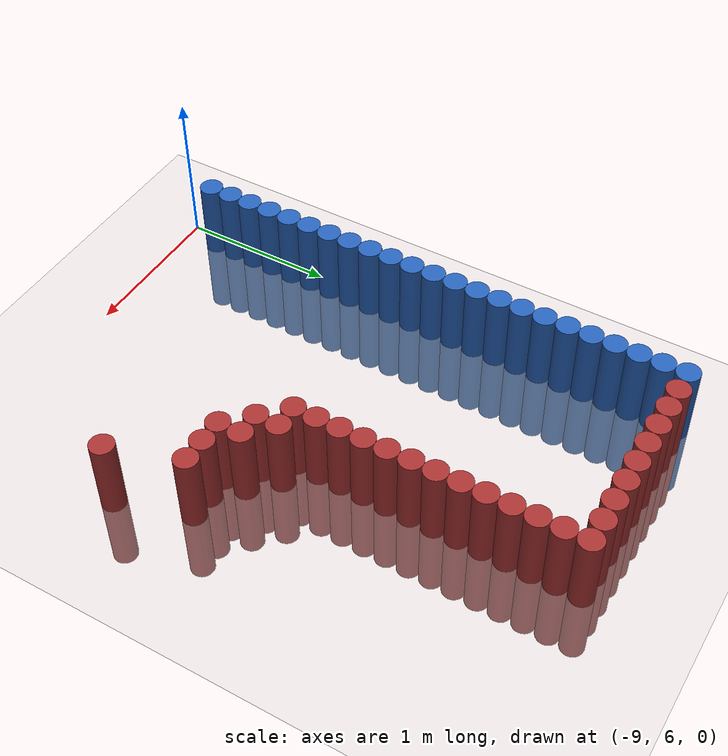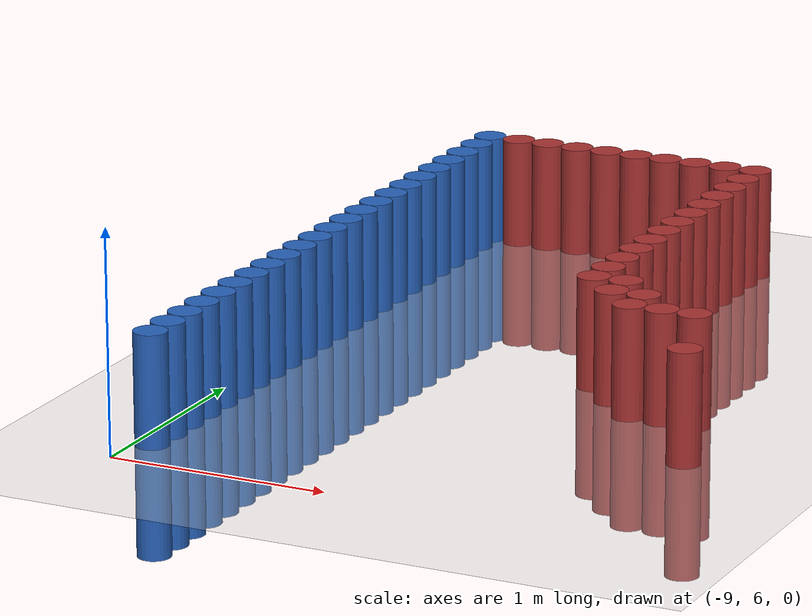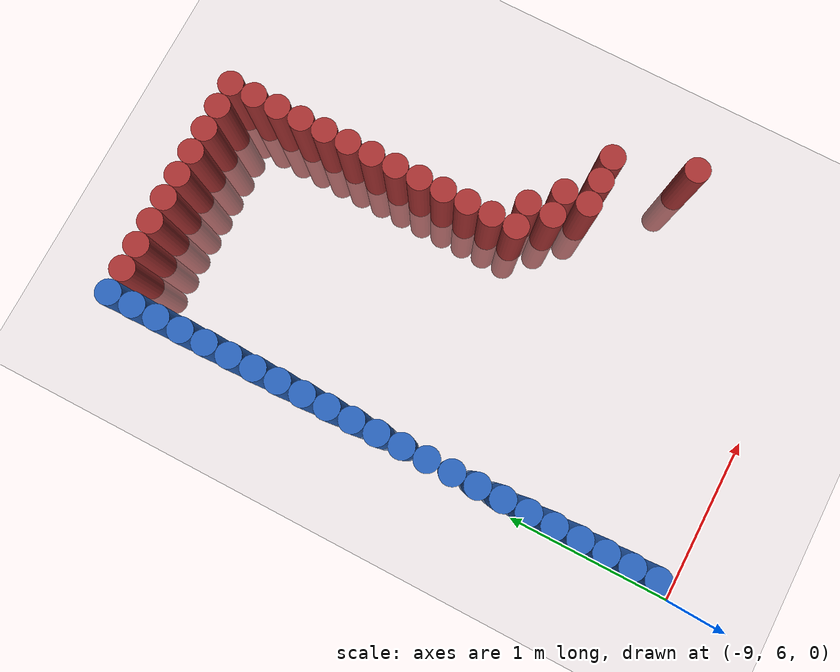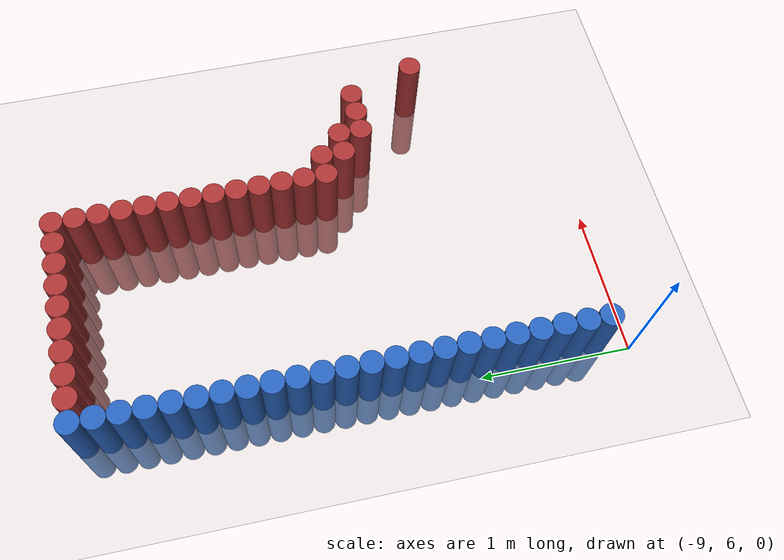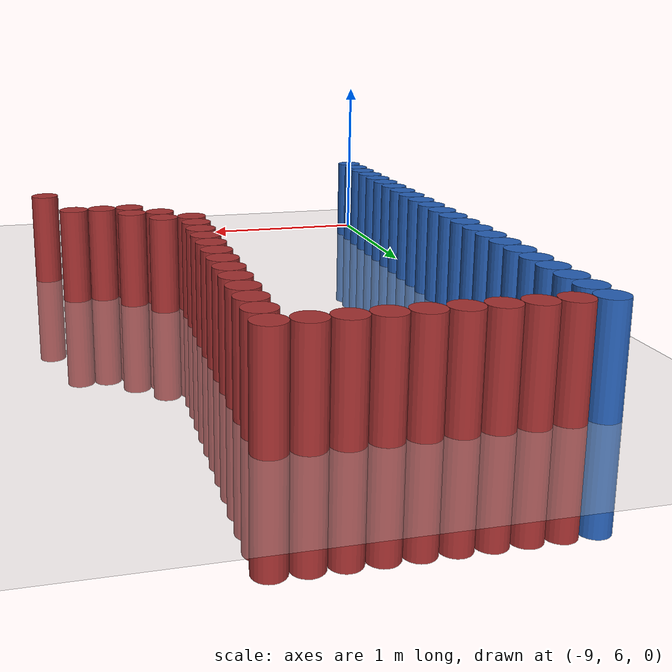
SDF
<sdf version="1.6">
 <world name="default">
  <model name="ground_plane">
   <static>1</static>
   <link name="link">
    <collision name="collision">
     <geometry><plane><normal>0 0 1</normal><size>100 100</size></plane></geometry>
     <surface><friction><ode><mu>100</mu><mu2>50</mu2></ode></friction></surface>
    </collision>
    <visual name="visual">
     <cast_shadows>0</cast_shadows>
     <geometry><plane><normal>0 0 1</normal><size>100 100</size></plane></geometry>
     <material>
      <script><uri>file://media/materials/scripts/gazebo.material</uri><name>Gazebo/Grey</name></script>
     </material>
    </visual>
   </link>
  </model>
  <model name="unit_cylinder_132">
   <static>1</static>
   <pose>-8.925000 6.225000 0.000000 0.000000 0.000000 0.000000</pose>
   <link name="link">
    <inertial>
     <mass>1</mass>
     <inertia><ixx>0.145833</ixx><ixy>0</ixy><ixz>0</ixz><iyy>0.145833</iyy><iyz>0</iyz><izz>0.125</izz></inertia>
    </inertial>
    <collision name="collision">
     <geometry><cylinder><radius>0.075000</radius><length>1</length></cylinder></geometry>
    </collision>
    <visual name="visual">
     <geometry><cylinder><radius>0.075000</radius><length>1</length></cylinder></geometry>
     <material>
      <ambient>0.152000 0.379000 0.720000 1</ambient>
      <diffuse>0.152000 0.379000 0.720000 1</diffuse>
     </material>
     <material>
      <script><name>Gazebo/Grey</name><uri>file://media/materials/scripts/gazebo.material</uri></script>
     </material>
    </visual>
   </link>
  </model>
  <model name="unit_cylinder_133">
   <static>1</static>
   <pose>-8.925000 6.375000 0.000000 0.000000 0.000000 0.000000</pose>
   <link name="link">
    <inertial>
     <mass>1</mass>
     <inertia><ixx>0.145833</ixx><ixy>0</ixy><ixz>0</ixz><iyy>0.145833</iyy><iyz>0</iyz><izz>0.125</izz></inertia>
    </inertial>
    <collision name="collision">
     <geometry><cylinder><radius>0.075000</radius><length>1</length></cylinder></geometry>
    </collision>
    <visual name="visual">
     <geometry><cylinder><radius>0.075000</radius><length>1</length></cylinder></geometry>
     <material>
      <ambient>0.152000 0.379000 0.720000 1</ambient>
      <diffuse>0.152000 0.379000 0.720000 1</diffuse>
     </material>
     <material>
      <script><name>Gazebo/Grey</name><uri>file://media/materials/scripts/gazebo.material</uri></script>
     </material>
    </visual>
   </link>
  </model>
  <model name="unit_cylinder_134">
   <static>1</static>
   <pose>-8.925000 6.525000 0.000000 0.000000 0.000000 0.000000</pose>
   <link name="link">
    <inertial>
     <mass>1</mass>
     <inertia><ixx>0.145833</ixx><ixy>0</ixy><ixz>0</ixz><iyy>0.145833</iyy><iyz>0</iyz><izz>0.125</izz></inertia>
    </inertial>
    <collision name="collision">
     <geometry><cylinder><radius>0.075000</radius><length>1</length></cylinder></geometry>
    </collision>
    <visual name="visual">
     <geometry><cylinder><radius>0.075000</radius><length>1</length></cylinder></geometry>
     <material>
      <ambient>0.152000 0.379000 0.720000 1</ambient>
      <diffuse>0.152000 0.379000 0.720000 1</diffuse>
     </material>
     <material>
      <script><name>Gazebo/Grey</name><uri>file://media/materials/scripts/gazebo.material</uri></script>
     </material>
    </visual>
   </link>
  </model>
  <model name="unit_cylinder_135">
   <static>1</static>
   <pose>-8.925000 6.675000 0.000000 0.000000 0.000000 0.000000</pose>
   <link name="link">
    <inertial>
     <mass>1</mass>
     <inertia><ixx>0.145833</ixx><ixy>0</ixy><ixz>0</ixz><iyy>0.145833</iyy><iyz>0</iyz><izz>0.125</izz></inertia>
    </inertial>
    <collision name="collision">
     <geometry><cylinder><radius>0.075000</radius><length>1</length></cylinder></geometry>
    </collision>
    <visual name="visual">
     <geometry><cylinder><radius>0.075000</radius><length>1</length></cylinder></geometry>
     <material>
      <ambient>0.152000 0.379000 0.720000 1</ambient>
      <diffuse>0.152000 0.379000 0.720000 1</diffuse>
     </material>
     <material>
      <script><name>Gazebo/Grey</name><uri>file://media/materials/scripts/gazebo.material</uri></script>
     </material>
    </visual>
   </link>
  </model>
  <model name="unit_cylinder_136">
   <static>1</static>
   <pose>-8.925000 6.825000 0.000000 0.000000 0.000000 0.000000</pose>
   <link name="link">
    <inertial>
     <mass>1</mass>
     <inertia><ixx>0.145833</ixx><ixy>0</ixy><ixz>0</ixz><iyy>0.145833</iyy><iyz>0</iyz><izz>0.125</izz></inertia>
    </inertial>
    <collision name="collision">
     <geometry><cylinder><radius>0.075000</radius><length>1</length></cylinder></geometry>
    </collision>
    <visual name="visual">
     <geometry><cylinder><radius>0.075000</radius><length>1</length></cylinder></geometry>
     <material>
      <ambient>0.152000 0.379000 0.720000 1</ambient>
      <diffuse>0.152000 0.379000 0.720000 1</diffuse>
     </material>
     <material>
      <script><name>Gazebo/Grey</name><uri>file://media/materials/scripts/gazebo.material</uri></script>
     </material>
    </visual>
   </link>
  </model>
  <model name="unit_cylinder_137">
   <static>1</static>
   <pose>-8.925000 6.975000 0.000000 0.000000 0.000000 0.000000</pose>
   <link name="link">
    <inertial>
     <mass>1</mass>
     <inertia><ixx>0.145833</ixx><ixy>0</ixy><ixz>0</ixz><iyy>0.145833</iyy><iyz>0</iyz><izz>0.125</izz></inertia>
    </inertial>
    <collision name="collision">
     <geometry><cylinder><radius>0.075000</radius><length>1</length></cylinder></geometry>
    </collision>
    <visual name="visual">
     <geometry><cylinder><radius>0.075000</radius><length>1</length></cylinder></geometry>
     <material>
      <ambient>0.152000 0.379000 0.720000 1</ambient>
      <diffuse>0.152000 0.379000 0.720000 1</diffuse>
     </material>
     <material>
      <script><name>Gazebo/Grey</name><uri>file://media/materials/scripts/gazebo.material</uri></script>
     </material>
    </visual>
   </link>
  </model>
  <model name="unit_cylinder_138">
   <static>1</static>
   <pose>-8.925000 7.125000 0.000000 0.000000 0.000000 0.000000</pose>
   <link name="link">
    <inertial>
     <mass>1</mass>
     <inertia><ixx>0.145833</ixx><ixy>0</ixy><ixz>0</ixz><iyy>0.145833</iyy><iyz>0</iyz><izz>0.125</izz></inertia>
    </inertial>
    <collision name="collision">
     <geometry><cylinder><radius>0.075000</radius><length>1</length></cylinder></geometry>
    </collision>
    <visual name="visual">
     <geometry><cylinder><radius>0.075000</radius><length>1</length></cylinder></geometry>
     <material>
      <ambient>0.152000 0.379000 0.720000 1</ambient>
      <diffuse>0.152000 0.379000 0.720000 1</diffuse>
     </material>
     <material>
      <script><name>Gazebo/Grey</name><uri>file://media/materials/scripts/gazebo.material</uri></script>
     </material>
    </visual>
   </link>
  </model>
  <model name="unit_cylinder_139">
   <static>1</static>
   <pose>-8.925000 7.275000 0.000000 0.000000 0.000000 0.000000</pose>
   <link name="link">
    <inertial>
     <mass>1</mass>
     <inertia><ixx>0.145833</ixx><ixy>0</ixy><ixz>0</ixz><iyy>0.145833</iyy><iyz>0</iyz><izz>0.125</izz></inertia>
    </inertial>
    <collision name="collision">
     <geometry><cylinder><radius>0.075000</radius><length>1</length></cylinder></geometry>
    </collision>
    <visual name="visual">
     <geometry><cylinder><radius>0.075000</radius><length>1</length></cylinder></geometry>
     <material>
      <ambient>0.152000 0.379000 0.720000 1</ambient>
      <diffuse>0.152000 0.379000 0.720000 1</diffuse>
     </material>
     <material>
      <script><name>Gazebo/Grey</name><uri>file://media/materials/scripts/gazebo.material</uri></script>
     </material>
    </visual>
   </link>
  </model>
  <model name="unit_cylinder_140">
   <static>1</static>
   <pose>-8.925000 7.425000 0.000000 0.000000 0.000000 0.000000</pose>
   <link name="link">
    <inertial>
     <mass>1</mass>
     <inertia><ixx>0.145833</ixx><ixy>0</ixy><ixz>0</ixz><iyy>0.145833</iyy><iyz>0</iyz><izz>0.125</izz></inertia>
    </inertial>
    <collision name="collision">
     <geometry><cylinder><radius>0.075000</radius><length>1</length></cylinder></geometry>
    </collision>
    <visual name="visual">
     <geometry><cylinder><radius>0.075000</radius><length>1</length></cylinder></geometry>
     <material>
      <ambient>0.152000 0.379000 0.720000 1</ambient>
      <diffuse>0.152000 0.379000 0.720000 1</diffuse>
     </material>
     <material>
      <script><name>Gazebo/Grey</name><uri>file://media/materials/scripts/gazebo.material</uri></script>
     </material>
    </visual>
   </link>
  </model>
  <model name="unit_cylinder_141">
   <static>1</static>
   <pose>-8.925000 7.575000 0.000000 0.000000 0.000000 0.000000</pose>
   <link name="link">
    <inertial>
     <mass>1</mass>
     <inertia><ixx>0.145833</ixx><ixy>0</ixy><ixz>0</ixz><iyy>0.145833</iyy><iyz>0</iyz><izz>0.125</izz></inertia>
    </inertial>
    <collision name="collision">
     <geometry><cylinder><radius>0.075000</radius><length>1</length></cylinder></geometry>
    </collision>
    <visual name="visual">
     <geometry><cylinder><radius>0.075000</radius><length>1</length></cylinder></geometry>
     <material>
      <ambient>0.152000 0.379000 0.720000 1</ambient>
      <diffuse>0.152000 0.379000 0.720000 1</diffuse>
     </material>
     <material>
      <script><name>Gazebo/Grey</name><uri>file://media/materials/scripts/gazebo.material</uri></script>
     </material>
    </visual>
   </link>
  </model>
  <model name="unit_cylinder_142">
   <static>1</static>
   <pose>-8.925000 7.725000 0.000000 0.000000 0.000000 0.000000</pose>
   <link name="link">
    <inertial>
     <mass>1</mass>
     <inertia><ixx>0.145833</ixx><ixy>0</ixy><ixz>0</ixz><iyy>0.145833</iyy><iyz>0</iyz><izz>0.125</izz></inertia>
    </inertial>
    <collision name="collision">
     <geometry><cylinder><radius>0.075000</radius><length>1</length></cylinder></geometry>
    </collision>
    <visual name="visual">
     <geometry><cylinder><radius>0.075000</radius><length>1</length></cylinder></geometry>
     <material>
      <ambient>0.152000 0.379000 0.720000 1</ambient>
      <diffuse>0.152000 0.379000 0.720000 1</diffuse>
     </material>
     <material>
      <script><name>Gazebo/Grey</name><uri>file://media/materials/scripts/gazebo.material</uri></script>
     </material>
    </visual>
   </link>
  </model>
  <model name="unit_cylinder_143">
   <static>1</static>
   <pose>-8.925000 7.875000 0.000000 0.000000 0.000000 0.000000</pose>
   <link name="link">
    <inertial>
     <mass>1</mass>
     <inertia><ixx>0.145833</ixx><ixy>0</ixy><ixz>0</ixz><iyy>0.145833</iyy><iyz>0</iyz><izz>0.125</izz></inertia>
    </inertial>
    <collision name="collision">
     <geometry><cylinder><radius>0.075000</radius><length>1</length></cylinder></geometry>
    </collision>
    <visual name="visual">
     <geometry><cylinder><radius>0.075000</radius><length>1</length></cylinder></geometry>
     <material>
      <ambient>0.152000 0.379000 0.720000 1</ambient>
      <diffuse>0.152000 0.379000 0.720000 1</diffuse>
     </material>
     <material>
      <script><name>Gazebo/Grey</name><uri>file://media/materials/scripts/gazebo.material</uri></script>
     </material>
    </visual>
   </link>
  </model>
  <model name="unit_cylinder_144">
   <static>1</static>
   <pose>-8.925000 8.025000 0.000000 0.000000 0.000000 0.000000</pose>
   <link name="link">
    <inertial>
     <mass>1</mass>
     <inertia><ixx>0.145833</ixx><ixy>0</ixy><ixz>0</ixz><iyy>0.145833</iyy><iyz>0</iyz><izz>0.125</izz></inertia>
    </inertial>
    <collision name="collision">
     <geometry><cylinder><radius>0.075000</radius><length>1</length></cylinder></geometry>
    </collision>
    <visual name="visual">
     <geometry><cylinder><radius>0.075000</radius><length>1</length></cylinder></geometry>
     <material>
      <ambient>0.152000 0.379000 0.720000 1</ambient>
      <diffuse>0.152000 0.379000 0.720000 1</diffuse>
     </material>
     <material>
      <script><name>Gazebo/Grey</name><uri>file://media/materials/scripts/gazebo.material</uri></script>
     </material>
    </visual>
   </link>
  </model>
  <model name="unit_cylinder_145">
   <static>1</static>
   <pose>-8.925000 8.175000 0.000000 0.000000 0.000000 0.000000</pose>
   <link name="link">
    <inertial>
     <mass>1</mass>
     <inertia><ixx>0.145833</ixx><ixy>0</ixy><ixz>0</ixz><iyy>0.145833</iyy><iyz>0</iyz><izz>0.125</izz></inertia>
    </inertial>
    <collision name="collision">
     <geometry><cylinder><radius>0.075000</radius><length>1</length></cylinder></geometry>
    </collision>
    <visual name="visual">
     <geometry><cylinder><radius>0.075000</radius><length>1</length></cylinder></geometry>
     <material>
      <ambient>0.152000 0.379000 0.720000 1</ambient>
      <diffuse>0.152000 0.379000 0.720000 1</diffuse>
     </material>
     <material>
      <script><name>Gazebo/Grey</name><uri>file://media/materials/scripts/gazebo.material</uri></script>
     </material>
    </visual>
   </link>
  </model>
  <model name="unit_cylinder_146">
   <static>1</static>
   <pose>-8.925000 8.325000 0.000000 0.000000 0.000000 0.000000</pose>
   <link name="link">
    <inertial>
     <mass>1</mass>
     <inertia><ixx>0.145833</ixx><ixy>0</ixy><ixz>0</ixz><iyy>0.145833</iyy><iyz>0</iyz><izz>0.125</izz></inertia>
    </inertial>
    <collision name="collision">
     <geometry><cylinder><radius>0.075000</radius><length>1</length></cylinder></geometry>
    </collision>
    <visual name="visual">
     <geometry><cylinder><radius>0.075000</radius><length>1</length></cylinder></geometry>
     <material>
      <ambient>0.152000 0.379000 0.720000 1</ambient>
      <diffuse>0.152000 0.379000 0.720000 1</diffuse>
     </material>
     <material>
      <script><name>Gazebo/Grey</name><uri>file://media/materials/scripts/gazebo.material</uri></script>
     </material>
    </visual>
   </link>
  </model>
  <model name="unit_cylinder_147">
   <static>1</static>
   <pose>-8.925000 8.475000 0.000000 0.000000 0.000000 0.000000</pose>
   <link name="link">
    <inertial>
     <mass>1</mass>
     <inertia><ixx>0.145833</ixx><ixy>0</ixy><ixz>0</ixz><iyy>0.145833</iyy><iyz>0</iyz><izz>0.125</izz></inertia>
    </inertial>
    <collision name="collision">
     <geometry><cylinder><radius>0.075000</radius><length>1</length></cylinder></geometry>
    </collision>
    <visual name="visual">
     <geometry><cylinder><radius>0.075000</radius><length>1</length></cylinder></geometry>
     <material>
      <ambient>0.152000 0.379000 0.720000 1</ambient>
      <diffuse>0.152000 0.379000 0.720000 1</diffuse>
     </material>
     <material>
      <script><name>Gazebo/Grey</name><uri>file://media/materials/scripts/gazebo.material</uri></script>
     </material>
    </visual>
   </link>
  </model>
  <model name="unit_cylinder_148">
   <static>1</static>
   <pose>-8.925000 8.625000 0.000000 0.000000 0.000000 0.000000</pose>
   <link name="link">
    <inertial>
     <mass>1</mass>
     <inertia><ixx>0.145833</ixx><ixy>0</ixy><ixz>0</ixz><iyy>0.145833</iyy><iyz>0</iyz><izz>0.125</izz></inertia>
    </inertial>
    <collision name="collision">
     <geometry><cylinder><radius>0.075000</radius><length>1</length></cylinder></geometry>
    </collision>
    <visual name="visual">
     <geometry><cylinder><radius>0.075000</radius><length>1</length></cylinder></geometry>
     <material>
      <ambient>0.152000 0.379000 0.720000 1</ambient>
      <diffuse>0.152000 0.379000 0.720000 1</diffuse>
     </material>
     <material>
      <script><name>Gazebo/Grey</name><uri>file://media/materials/scripts/gazebo.material</uri></script>
     </material>
    </visual>
   </link>
  </model>
  <model name="unit_cylinder_149">
   <static>1</static>
   <pose>-8.925000 8.775000 0.000000 0.000000 0.000000 0.000000</pose>
   <link name="link">
    <inertial>
     <mass>1</mass>
     <inertia><ixx>0.145833</ixx><ixy>0</ixy><ixz>0</ixz><iyy>0.145833</iyy><iyz>0</iyz><izz>0.125</izz></inertia>
    </inertial>
    <collision name="collision">
     <geometry><cylinder><radius>0.075000</radius><length>1</length></cylinder></geometry>
    </collision>
    <visual name="visual">
     <geometry><cylinder><radius>0.075000</radius><length>1</length></cylinder></geometry>
     <material>
      <ambient>0.152000 0.379000 0.720000 1</ambient>
      <diffuse>0.152000 0.379000 0.720000 1</diffuse>
     </material>
     <material>
      <script><name>Gazebo/Grey</name><uri>file://media/materials/scripts/gazebo.material</uri></script>
     </material>
    </visual>
   </link>
  </model>
  <model name="unit_cylinder_150">
   <static>1</static>
   <pose>-8.925000 8.925000 0.000000 0.000000 0.000000 0.000000</pose>
   <link name="link">
    <inertial>
     <mass>1</mass>
     <inertia><ixx>0.145833</ixx><ixy>0</ixy><ixz>0</ixz><iyy>0.145833</iyy><iyz>0</iyz><izz>0.125</izz></inertia>
    </inertial>
    <collision name="collision">
     <geometry><cylinder><radius>0.075000</radius><length>1</length></cylinder></geometry>
    </collision>
    <visual name="visual">
     <geometry><cylinder><radius>0.075000</radius><length>1</length></cylinder></geometry>
     <material>
      <ambient>0.152000 0.379000 0.720000 1</ambient>
      <diffuse>0.152000 0.379000 0.720000 1</diffuse>
     </material>
     <material>
      <script><name>Gazebo/Grey</name><uri>file://media/materials/scripts/gazebo.material</uri></script>
     </material>
    </visual>
   </link>
  </model>
  <model name="unit_cylinder_151">
   <static>1</static>
   <pose>-8.925000 9.075000 0.000000 0.000000 0.000000 0.000000</pose>
   <link name="link">
    <inertial>
     <mass>1</mass>
     <inertia><ixx>0.145833</ixx><ixy>0</ixy><ixz>0</ixz><iyy>0.145833</iyy><iyz>0</iyz><izz>0.125</izz></inertia>
    </inertial>
    <collision name="collision">
     <geometry><cylinder><radius>0.075000</radius><length>1</length></cylinder></geometry>
    </collision>
    <visual name="visual">
     <geometry><cylinder><radius>0.075000</radius><length>1</length></cylinder></geometry>
     <material>
      <ambient>0.152000 0.379000 0.720000 1</ambient>
      <diffuse>0.152000 0.379000 0.720000 1</diffuse>
     </material>
     <material>
      <script><name>Gazebo/Grey</name><uri>file://media/materials/scripts/gazebo.material</uri></script>
     </material>
    </visual>
   </link>
  </model>
  <model name="unit_cylinder_152">
   <static>1</static>
   <pose>-8.925000 9.225000 0.000000 0.000000 0.000000 0.000000</pose>
   <link name="link">
    <inertial>
     <mass>1</mass>
     <inertia><ixx>0.145833</ixx><ixy>0</ixy><ixz>0</ixz><iyy>0.145833</iyy><iyz>0</iyz><izz>0.125</izz></inertia>
    </inertial>
    <collision name="collision">
     <geometry><cylinder><radius>0.075000</radius><length>1</length></cylinder></geometry>
    </collision>
    <visual name="visual">
     <geometry><cylinder><radius>0.075000</radius><length>1</length></cylinder></geometry>
     <material>
      <ambient>0.152000 0.379000 0.720000 1</ambient>
      <diffuse>0.152000 0.379000 0.720000 1</diffuse>
     </material>
     <material>
      <script><name>Gazebo/Grey</name><uri>file://media/materials/scripts/gazebo.material</uri></script>
     </material>
    </visual>
   </link>
  </model>
  <model name="unit_cylinder_153">
   <static>1</static>
   <pose>-8.925000 9.375000 0.000000 0.000000 0.000000 0.000000</pose>
   <link name="link">
    <inertial>
     <mass>1</mass>
     <inertia><ixx>0.145833</ixx><ixy>0</ixy><ixz>0</ixz><iyy>0.145833</iyy><iyz>0</iyz><izz>0.125</izz></inertia>
    </inertial>
    <collision name="collision">
     <geometry><cylinder><radius>0.075000</radius><length>1</length></cylinder></geometry>
    </collision>
    <visual name="visual">
     <geometry><cylinder><radius>0.075000</radius><length>1</length></cylinder></geometry>
     <material>
      <ambient>0.152000 0.379000 0.720000 1</ambient>
      <diffuse>0.152000 0.379000 0.720000 1</diffuse>
     </material>
     <material>
      <script><name>Gazebo/Grey</name><uri>file://media/materials/scripts/gazebo.material</uri></script>
     </material>
    </visual>
   </link>
  </model>
  <model name="unit_cylinder_154">
   <static>1</static>
   <pose>-8.925000 9.525000 0.000000 0.000000 0.000000 0.000000</pose>
   <link name="link">
    <inertial>
     <mass>1</mass>
     <inertia><ixx>0.145833</ixx><ixy>0</ixy><ixz>0</ixz><iyy>0.145833</iyy><iyz>0</iyz><izz>0.125</izz></inertia>
    </inertial>
    <collision name="collision">
     <geometry><cylinder><radius>0.075000</radius><length>1</length></cylinder></geometry>
    </collision>
    <visual name="visual">
     <geometry><cylinder><radius>0.075000</radius><length>1</length></cylinder></geometry>
     <material>
      <ambient>0.152000 0.379000 0.720000 1</ambient>
      <diffuse>0.152000 0.379000 0.720000 1</diffuse>
     </material>
     <material>
      <script><name>Gazebo/Grey</name><uri>file://media/materials/scripts/gazebo.material</uri></script>
     </material>
    </visual>
   </link>
  </model>
  <model name="unit_cylinder_156">
   <static>1</static>
   <pose>-8.775000 9.525000 0.000000 0.000000 0.000000 0.000000</pose>
   <link name="link">
    <inertial>
     <mass>1</mass>
     <inertia><ixx>0.145833</ixx><ixy>0</ixy><ixz>0</ixz><iyy>0.145833</iyy><iyz>0</iyz><izz>0.125</izz></inertia>
    </inertial>
    <collision name="collision">
     <geometry><cylinder><radius>0.075000</radius><length>1</length></cylinder></geometry>
    </collision>
    <visual name="visual">
     <geometry><cylinder><radius>0.075000</radius><length>1</length></cylinder></geometry>
     <material>
      <ambient>0.648000 0.192000 0.192000 1</ambient>
      <diffuse>0.648000 0.192000 0.192000 1</diffuse>
     </material>
     <material>
      <script><name>Gazebo/Grey</name><uri>file://media/materials/scripts/gazebo.material</uri></script>
     </material>
    </visual>
   </link>
  </model>
  <model name="unit_cylinder_158">
   <static>1</static>
   <pose>-8.625000 9.525000 0.000000 0.000000 0.000000 0.000000</pose>
   <link name="link">
    <inertial>
     <mass>1</mass>
     <inertia><ixx>0.145833</ixx><ixy>0</ixy><ixz>0</ixz><iyy>0.145833</iyy><iyz>0</iyz><izz>0.125</izz></inertia>
    </inertial>
    <collision name="collision">
     <geometry><cylinder><radius>0.075000</radius><length>1</length></cylinder></geometry>
    </collision>
    <visual name="visual">
     <geometry><cylinder><radius>0.075000</radius><length>1</length></cylinder></geometry>
     <material>
      <ambient>0.648000 0.192000 0.192000 1</ambient>
      <diffuse>0.648000 0.192000 0.192000 1</diffuse>
     </material>
     <material>
      <script><name>Gazebo/Grey</name><uri>file://media/materials/scripts/gazebo.material</uri></script>
     </material>
    </visual>
   </link>
  </model>
  <model name="unit_cylinder_160">
   <static>1</static>
   <pose>-8.475000 9.525000 0.000000 0.000000 0.000000 0.000000</pose>
   <link name="link">
    <inertial>
     <mass>1</mass>
     <inertia><ixx>0.145833</ixx><ixy>0</ixy><ixz>0</ixz><iyy>0.145833</iyy><iyz>0</iyz><izz>0.125</izz></inertia>
    </inertial>
    <collision name="collision">
     <geometry><cylinder><radius>0.075000</radius><length>1</length></cylinder></geometry>
    </collision>
    <visual name="visual">
     <geometry><cylinder><radius>0.075000</radius><length>1</length></cylinder></geometry>
     <material>
      <ambient>0.648000 0.192000 0.192000 1</ambient>
      <diffuse>0.648000 0.192000 0.192000 1</diffuse>
     </material>
     <material>
      <script><name>Gazebo/Grey</name><uri>file://media/materials/scripts/gazebo.material</uri></script>
     </material>
    </visual>
   </link>
  </model>
  <model name="unit_cylinder_162">
   <static>1</static>
   <pose>-8.325000 9.525000 0.000000 0.000000 0.000000 0.000000</pose>
   <link name="link">
    <inertial>
     <mass>1</mass>
     <inertia><ixx>0.145833</ixx><ixy>0</ixy><ixz>0</ixz><iyy>0.145833</iyy><iyz>0</iyz><izz>0.125</izz></inertia>
    </inertial>
    <collision name="collision">
     <geometry><cylinder><radius>0.075000</radius><length>1</length></cylinder></geometry>
    </collision>
    <visual name="visual">
     <geometry><cylinder><radius>0.075000</radius><length>1</length></cylinder></geometry>
     <material>
      <ambient>0.648000 0.192000 0.192000 1</ambient>
      <diffuse>0.648000 0.192000 0.192000 1</diffuse>
     </material>
     <material>
      <script><name>Gazebo/Grey</name><uri>file://media/materials/scripts/gazebo.material</uri></script>
     </material>
    </visual>
   </link>
  </model>
  <model name="unit_cylinder_164">
   <static>1</static>
   <pose>-8.175000 9.525000 0.000000 0.000000 0.000000 0.000000</pose>
   <link name="link">
    <inertial>
     <mass>1</mass>
     <inertia><ixx>0.145833</ixx><ixy>0</ixy><ixz>0</ixz><iyy>0.145833</iyy><iyz>0</iyz><izz>0.125</izz></inertia>
    </inertial>
    <collision name="collision">
     <geometry><cylinder><radius>0.075000</radius><length>1</length></cylinder></geometry>
    </collision>
    <visual name="visual">
     <geometry><cylinder><radius>0.075000</radius><length>1</length></cylinder></geometry>
     <material>
      <ambient>0.648000 0.192000 0.192000 1</ambient>
      <diffuse>0.648000 0.192000 0.192000 1</diffuse>
     </material>
     <material>
      <script><name>Gazebo/Grey</name><uri>file://media/materials/scripts/gazebo.material</uri></script>
     </material>
    </visual>
   </link>
  </model>
  <model name="unit_cylinder_166">
   <static>1</static>
   <pose>-8.025000 9.525000 0.000000 0.000000 0.000000 0.000000</pose>
   <link name="link">
    <inertial>
     <mass>1</mass>
     <inertia><ixx>0.145833</ixx><ixy>0</ixy><ixz>0</ixz><iyy>0.145833</iyy><iyz>0</iyz><izz>0.125</izz></inertia>
    </inertial>
    <collision name="collision">
     <geometry><cylinder><radius>0.075000</radius><length>1</length></cylinder></geometry>
    </collision>
    <visual name="visual">
     <geometry><cylinder><radius>0.075000</radius><length>1</length></cylinder></geometry>
     <material>
      <ambient>0.648000 0.192000 0.192000 1</ambient>
      <diffuse>0.648000 0.192000 0.192000 1</diffuse>
     </material>
     <material>
      <script><name>Gazebo/Grey</name><uri>file://media/materials/scripts/gazebo.material</uri></script>
     </material>
    </visual>
   </link>
  </model>
  <model name="unit_cylinder_168">
   <static>1</static>
   <pose>-7.875000 9.525000 0.000000 0.000000 0.000000 0.000000</pose>
   <link name="link">
    <inertial>
     <mass>1</mass>
     <inertia><ixx>0.145833</ixx><ixy>0</ixy><ixz>0</ixz><iyy>0.145833</iyy><iyz>0</iyz><izz>0.125</izz></inertia>
    </inertial>
    <collision name="collision">
     <geometry><cylinder><radius>0.075000</radius><length>1</length></cylinder></geometry>
    </collision>
    <visual name="visual">
     <geometry><cylinder><radius>0.075000</radius><length>1</length></cylinder></geometry>
     <material>
      <ambient>0.648000 0.192000 0.192000 1</ambient>
      <diffuse>0.648000 0.192000 0.192000 1</diffuse>
     </material>
     <material>
      <script><name>Gazebo/Grey</name><uri>file://media/materials/scripts/gazebo.material</uri></script>
     </material>
    </visual>
   </link>
  </model>
  <model name="unit_cylinder_170">
   <static>1</static>
   <pose>-7.725000 9.525000 0.000000 0.000000 0.000000 0.000000</pose>
   <link name="link">
    <inertial>
     <mass>1</mass>
     <inertia><ixx>0.145833</ixx><ixy>0</ixy><ixz>0</ixz><iyy>0.145833</iyy><iyz>0</iyz><izz>0.125</izz></inertia>
    </inertial>
    <collision name="collision">
     <geometry><cylinder><radius>0.075000</radius><length>1</length></cylinder></geometry>
    </collision>
    <visual name="visual">
     <geometry><cylinder><radius>0.075000</radius><length>1</length></cylinder></geometry>
     <material>
      <ambient>0.648000 0.192000 0.192000 1</ambient>
      <diffuse>0.648000 0.192000 0.192000 1</diffuse>
     </material>
     <material>
      <script><name>Gazebo/Grey</name><uri>file://media/materials/scripts/gazebo.material</uri></script>
     </material>
    </visual>
   </link>
  </model>
  <model name="unit_cylinder_172">
   <static>1</static>
   <pose>-7.575000 7.725000 0.000000 0.000000 0.000000 0.000000</pose>
   <link name="link">
    <inertial>
     <mass>1</mass>
     <inertia><ixx>0.145833</ixx><ixy>0</ixy><ixz>0</ixz><iyy>0.145833</iyy><iyz>0</iyz><izz>0.125</izz></inertia>
    </inertial>
    <collision name="collision">
     <geometry><cylinder><radius>0.075000</radius><length>1</length></cylinder></geometry>
    </collision>
    <visual name="visual">
     <geometry><cylinder><radius>0.075000</radius><length>1</length></cylinder></geometry>
     <material>
      <ambient>0.648000 0.192000 0.192000 1</ambient>
      <diffuse>0.648000 0.192000 0.192000 1</diffuse>
     </material>
     <material>
      <script><name>Gazebo/Grey</name><uri>file://media/materials/scripts/gazebo.material</uri></script>
     </material>
    </visual>
   </link>
  </model>
  <model name="unit_cylinder_173">
   <static>1</static>
   <pose>-7.575000 7.875000 0.000000 0.000000 0.000000 0.000000</pose>
   <link name="link">
    <inertial>
     <mass>1</mass>
     <inertia><ixx>0.145833</ixx><ixy>0</ixy><ixz>0</ixz><iyy>0.145833</iyy><iyz>0</iyz><izz>0.125</izz></inertia>
    </inertial>
    <collision name="collision">
     <geometry><cylinder><radius>0.075000</radius><length>1</length></cylinder></geometry>
    </collision>
    <visual name="visual">
     <geometry><cylinder><radius>0.075000</radius><length>1</length></cylinder></geometry>
     <material>
      <ambient>0.648000 0.192000 0.192000 1</ambient>
      <diffuse>0.648000 0.192000 0.192000 1</diffuse>
     </material>
     <material>
      <script><name>Gazebo/Grey</name><uri>file://media/materials/scripts/gazebo.material</uri></script>
     </material>
    </visual>
   </link>
  </model>
  <model name="unit_cylinder_174">
   <static>1</static>
   <pose>-7.575000 8.025000 0.000000 0.000000 0.000000 0.000000</pose>
   <link name="link">
    <inertial>
     <mass>1</mass>
     <inertia><ixx>0.145833</ixx><ixy>0</ixy><ixz>0</ixz><iyy>0.145833</iyy><iyz>0</iyz><izz>0.125</izz></inertia>
    </inertial>
    <collision name="collision">
     <geometry><cylinder><radius>0.075000</radius><length>1</length></cylinder></geometry>
    </collision>
    <visual name="visual">
     <geometry><cylinder><radius>0.075000</radius><length>1</length></cylinder></geometry>
     <material>
      <ambient>0.648000 0.192000 0.192000 1</ambient>
      <diffuse>0.648000 0.192000 0.192000 1</diffuse>
     </material>
     <material>
      <script><name>Gazebo/Grey</name><uri>file://media/materials/scripts/gazebo.material</uri></script>
     </material>
    </visual>
   </link>
  </model>
  <model name="unit_cylinder_175">
   <static>1</static>
   <pose>-7.575000 8.175000 0.000000 0.000000 0.000000 0.000000</pose>
   <link name="link">
    <inertial>
     <mass>1</mass>
     <inertia><ixx>0.145833</ixx><ixy>0</ixy><ixz>0</ixz><iyy>0.145833</iyy><iyz>0</iyz><izz>0.125</izz></inertia>
    </inertial>
    <collision name="collision">
     <geometry><cylinder><radius>0.075000</radius><length>1</length></cylinder></geometry>
    </collision>
    <visual name="visual">
     <geometry><cylinder><radius>0.075000</radius><length>1</length></cylinder></geometry>
     <material>
      <ambient>0.648000 0.192000 0.192000 1</ambient>
      <diffuse>0.648000 0.192000 0.192000 1</diffuse>
     </material>
     <material>
      <script><name>Gazebo/Grey</name><uri>file://media/materials/scripts/gazebo.material</uri></script>
     </material>
    </visual>
   </link>
  </model>
  <model name="unit_cylinder_176">
   <static>1</static>
   <pose>-7.575000 8.325000 0.000000 0.000000 0.000000 0.000000</pose>
   <link name="link">
    <inertial>
     <mass>1</mass>
     <inertia><ixx>0.145833</ixx><ixy>0</ixy><ixz>0</ixz><iyy>0.145833</iyy><iyz>0</iyz><izz>0.125</izz></inertia>
    </inertial>
    <collision name="collision">
     <geometry><cylinder><radius>0.075000</radius><length>1</length></cylinder></geometry>
    </collision>
    <visual name="visual">
     <geometry><cylinder><radius>0.075000</radius><length>1</length></cylinder></geometry>
     <material>
      <ambient>0.648000 0.192000 0.192000 1</ambient>
      <diffuse>0.648000 0.192000 0.192000 1</diffuse>
     </material>
     <material>
      <script><name>Gazebo/Grey</name><uri>file://media/materials/scripts/gazebo.material</uri></script>
     </material>
    </visual>
   </link>
  </model>
  <model name="unit_cylinder_177">
   <static>1</static>
   <pose>-7.575000 8.475000 0.000000 0.000000 0.000000 0.000000</pose>
   <link name="link">
    <inertial>
     <mass>1</mass>
     <inertia><ixx>0.145833</ixx><ixy>0</ixy><ixz>0</ixz><iyy>0.145833</iyy><iyz>0</iyz><izz>0.125</izz></inertia>
    </inertial>
    <collision name="collision">
     <geometry><cylinder><radius>0.075000</radius><length>1</length></cylinder></geometry>
    </collision>
    <visual name="visual">
     <geometry><cylinder><radius>0.075000</radius><length>1</length></cylinder></geometry>
     <material>
      <ambient>0.648000 0.192000 0.192000 1</ambient>
      <diffuse>0.648000 0.192000 0.192000 1</diffuse>
     </material>
     <material>
      <script><name>Gazebo/Grey</name><uri>file://media/materials/scripts/gazebo.material</uri></script>
     </material>
    </visual>
   </link>
  </model>
  <model name="unit_cylinder_178">
   <static>1</static>
   <pose>-7.575000 8.625000 0.000000 0.000000 0.000000 0.000000</pose>
   <link name="link">
    <inertial>
     <mass>1</mass>
     <inertia><ixx>0.145833</ixx><ixy>0</ixy><ixz>0</ixz><iyy>0.145833</iyy><iyz>0</iyz><izz>0.125</izz></inertia>
    </inertial>
    <collision name="collision">
     <geometry><cylinder><radius>0.075000</radius><length>1</length></cylinder></geometry>
    </collision>
    <visual name="visual">
     <geometry><cylinder><radius>0.075000</radius><length>1</length></cylinder></geometry>
     <material>
      <ambient>0.648000 0.192000 0.192000 1</ambient>
      <diffuse>0.648000 0.192000 0.192000 1</diffuse>
     </material>
     <material>
      <script><name>Gazebo/Grey</name><uri>file://media/materials/scripts/gazebo.material</uri></script>
     </material>
    </visual>
   </link>
  </model>
  <model name="unit_cylinder_179">
   <static>1</static>
   <pose>-7.575000 8.775000 0.000000 0.000000 0.000000 0.000000</pose>
   <link name="link">
    <inertial>
     <mass>1</mass>
     <inertia><ixx>0.145833</ixx><ixy>0</ixy><ixz>0</ixz><iyy>0.145833</iyy><iyz>0</iyz><izz>0.125</izz></inertia>
    </inertial>
    <collision name="collision">
     <geometry><cylinder><radius>0.075000</radius><length>1</length></cylinder></geometry>
    </collision>
    <visual name="visual">
     <geometry><cylinder><radius>0.075000</radius><length>1</length></cylinder></geometry>
     <material>
      <ambient>0.648000 0.192000 0.192000 1</ambient>
      <diffuse>0.648000 0.192000 0.192000 1</diffuse>
     </material>
     <material>
      <script><name>Gazebo/Grey</name><uri>file://media/materials/scripts/gazebo.material</uri></script>
     </material>
    </visual>
   </link>
  </model>
  <model name="unit_cylinder_180">
   <static>1</static>
   <pose>-7.575000 8.925000 0.000000 0.000000 0.000000 0.000000</pose>
   <link name="link">
    <inertial>
     <mass>1</mass>
     <inertia><ixx>0.145833</ixx><ixy>0</ixy><ixz>0</ixz><iyy>0.145833</iyy><iyz>0</iyz><izz>0.125</izz></inertia>
    </inertial>
    <collision name="collision">
     <geometry><cylinder><radius>0.075000</radius><length>1</length></cylinder></geometry>
    </collision>
    <visual name="visual">
     <geometry><cylinder><radius>0.075000</radius><length>1</length></cylinder></geometry>
     <material>
      <ambient>0.648000 0.192000 0.192000 1</ambient>
      <diffuse>0.648000 0.192000 0.192000 1</diffuse>
     </material>
     <material>
      <script><name>Gazebo/Grey</name><uri>file://media/materials/scripts/gazebo.material</uri></script>
     </material>
    </visual>
   </link>
  </model>
  <model name="unit_cylinder_181">
   <static>1</static>
   <pose>-7.575000 9.075000 0.000000 0.000000 0.000000 0.000000</pose>
   <link name="link">
    <inertial>
     <mass>1</mass>
     <inertia><ixx>0.145833</ixx><ixy>0</ixy><ixz>0</ixz><iyy>0.145833</iyy><iyz>0</iyz><izz>0.125</izz></inertia>
    </inertial>
    <collision name="collision">
     <geometry><cylinder><radius>0.075000</radius><length>1</length></cylinder></geometry>
    </collision>
    <visual name="visual">
     <geometry><cylinder><radius>0.075000</radius><length>1</length></cylinder></geometry>
     <material>
      <ambient>0.648000 0.192000 0.192000 1</ambient>
      <diffuse>0.648000 0.192000 0.192000 1</diffuse>
     </material>
     <material>
      <script><name>Gazebo/Grey</name><uri>file://media/materials/scripts/gazebo.material</uri></script>
     </material>
    </visual>
   </link>
  </model>
  <model name="unit_cylinder_182">
   <static>1</static>
   <pose>-7.575000 9.225000 0.000000 0.000000 0.000000 0.000000</pose>
   <link name="link">
    <inertial>
     <mass>1</mass>
     <inertia><ixx>0.145833</ixx><ixy>0</ixy><ixz>0</ixz><iyy>0.145833</iyy><iyz>0</iyz><izz>0.125</izz></inertia>
    </inertial>
    <collision name="collision">
     <geometry><cylinder><radius>0.075000</radius><length>1</length></cylinder></geometry>
    </collision>
    <visual name="visual">
     <geometry><cylinder><radius>0.075000</radius><length>1</length></cylinder></geometry>
     <material>
      <ambient>0.648000 0.192000 0.192000 1</ambient>
      <diffuse>0.648000 0.192000 0.192000 1</diffuse>
     </material>
     <material>
      <script><name>Gazebo/Grey</name><uri>file://media/materials/scripts/gazebo.material</uri></script>
     </material>
    </visual>
   </link>
  </model>
  <model name="unit_cylinder_183">
   <static>1</static>
   <pose>-7.575000 9.375000 0.000000 0.000000 0.000000 0.000000</pose>
   <link name="link">
    <inertial>
     <mass>1</mass>
     <inertia><ixx>0.145833</ixx><ixy>0</ixy><ixz>0</ixz><iyy>0.145833</iyy><iyz>0</iyz><izz>0.125</izz></inertia>
    </inertial>
    <collision name="collision">
     <geometry><cylinder><radius>0.075000</radius><length>1</length></cylinder></geometry>
    </collision>
    <visual name="visual">
     <geometry><cylinder><radius>0.075000</radius><length>1</length></cylinder></geometry>
     <material>
      <ambient>0.648000 0.192000 0.192000 1</ambient>
      <diffuse>0.648000 0.192000 0.192000 1</diffuse>
     </material>
     <material>
      <script><name>Gazebo/Grey</name><uri>file://media/materials/scripts/gazebo.material</uri></script>
     </material>
    </visual>
   </link>
  </model>
  <model name="unit_cylinder_184">
   <static>1</static>
   <pose>-7.575000 9.525000 0.000000 0.000000 0.000000 0.000000</pose>
   <link name="link">
    <inertial>
     <mass>1</mass>
     <inertia><ixx>0.145833</ixx><ixy>0</ixy><ixz>0</ixz><iyy>0.145833</iyy><iyz>0</iyz><izz>0.125</izz></inertia>
    </inertial>
    <collision name="collision">
     <geometry><cylinder><radius>0.075000</radius><length>1</length></cylinder></geometry>
    </collision>
    <visual name="visual">
     <geometry><cylinder><radius>0.075000</radius><length>1</length></cylinder></geometry>
     <material>
      <ambient>0.648000 0.192000 0.192000 1</ambient>
      <diffuse>0.648000 0.192000 0.192000 1</diffuse>
     </material>
     <material>
      <script><name>Gazebo/Grey</name><uri>file://media/materials/scripts/gazebo.material</uri></script>
     </material>
    </visual>
   </link>
  </model>
  <model name="unit_cylinder_186">
   <static>1</static>
   <pose>-7.425000 7.575000 0.000000 0.000000 0.000000 0.000000</pose>
   <link name="link">
    <inertial>
     <mass>1</mass>
     <inertia><ixx>0.145833</ixx><ixy>0</ixy><ixz>0</ixz><iyy>0.145833</iyy><iyz>0</iyz><izz>0.125</izz></inertia>
    </inertial>
    <collision name="collision">
     <geometry><cylinder><radius>0.075000</radius><length>1</length></cylinder></geometry>
    </collision>
    <visual name="visual">
     <geometry><cylinder><radius>0.075000</radius><length>1</length></cylinder></geometry>
     <material>
      <ambient>0.648000 0.192000 0.192000 1</ambient>
      <diffuse>0.648000 0.192000 0.192000 1</diffuse>
     </material>
     <material>
      <script><name>Gazebo/Grey</name><uri>file://media/materials/scripts/gazebo.material</uri></script>
     </material>
    </visual>
   </link>
  </model>
  <model name="unit_cylinder_187">
   <static>1</static>
   <pose>-7.425000 7.725000 0.000000 0.000000 0.000000 0.000000</pose>
   <link name="link">
    <inertial>
     <mass>1</mass>
     <inertia><ixx>0.145833</ixx><ixy>0</ixy><ixz>0</ixz><iyy>0.145833</iyy><iyz>0</iyz><izz>0.125</izz></inertia>
    </inertial>
    <collision name="collision">
     <geometry><cylinder><radius>0.075000</radius><length>1</length></cylinder></geometry>
    </collision>
    <visual name="visual">
     <geometry><cylinder><radius>0.075000</radius><length>1</length></cylinder></geometry>
     <material>
      <ambient>0.648000 0.192000 0.192000 1</ambient>
      <diffuse>0.648000 0.192000 0.192000 1</diffuse>
     </material>
     <material>
      <script><name>Gazebo/Grey</name><uri>file://media/materials/scripts/gazebo.material</uri></script>
     </material>
    </visual>
   </link>
  </model>
  <model name="unit_cylinder_189">
   <static>1</static>
   <pose>-7.275000 7.425000 0.000000 0.000000 0.000000 0.000000</pose>
   <link name="link">
    <inertial>
     <mass>1</mass>
     <inertia><ixx>0.145833</ixx><ixy>0</ixy><ixz>0</ixz><iyy>0.145833</iyy><iyz>0</iyz><izz>0.125</izz></inertia>
    </inertial>
    <collision name="collision">
     <geometry><cylinder><radius>0.075000</radius><length>1</length></cylinder></geometry>
    </collision>
    <visual name="visual">
     <geometry><cylinder><radius>0.075000</radius><length>1</length></cylinder></geometry>
     <material>
      <ambient>0.648000 0.192000 0.192000 1</ambient>
      <diffuse>0.648000 0.192000 0.192000 1</diffuse>
     </material>
     <material>
      <script><name>Gazebo/Grey</name><uri>file://media/materials/scripts/gazebo.material</uri></script>
     </material>
    </visual>
   </link>
  </model>
  <model name="unit_cylinder_190">
   <static>1</static>
   <pose>-7.275000 7.575000 0.000000 0.000000 0.000000 0.000000</pose>
   <link name="link">
    <inertial>
     <mass>1</mass>
     <inertia><ixx>0.145833</ixx><ixy>0</ixy><ixz>0</ixz><iyy>0.145833</iyy><iyz>0</iyz><izz>0.125</izz></inertia>
    </inertial>
    <collision name="collision">
     <geometry><cylinder><radius>0.075000</radius><length>1</length></cylinder></geometry>
    </collision>
    <visual name="visual">
     <geometry><cylinder><radius>0.075000</radius><length>1</length></cylinder></geometry>
     <material>
      <ambient>0.648000 0.192000 0.192000 1</ambient>
      <diffuse>0.648000 0.192000 0.192000 1</diffuse>
     </material>
     <material>
      <script><name>Gazebo/Grey</name><uri>file://media/materials/scripts/gazebo.material</uri></script>
     </material>
    </visual>
   </link>
  </model>
  <model name="unit_cylinder_192">
   <static>1</static>
   <pose>-7.125000 7.425000 0.000000 0.000000 0.000000 0.000000</pose>
   <link name="link">
    <inertial>
     <mass>1</mass>
     <inertia><ixx>0.145833</ixx><ixy>0</ixy><ixz>0</ixz><iyy>0.145833</iyy><iyz>0</iyz><izz>0.125</izz></inertia>
    </inertial>
    <collision name="collision">
     <geometry><cylinder><radius>0.075000</radius><length>1</length></cylinder></geometry>
    </collision>
    <visual name="visual">
     <geometry><cylinder><radius>0.075000</radius><length>1</length></cylinder></geometry>
     <material>
      <ambient>0.648000 0.192000 0.192000 1</ambient>
      <diffuse>0.648000 0.192000 0.192000 1</diffuse>
     </material>
     <material>
      <script><name>Gazebo/Grey</name><uri>file://media/materials/scripts/gazebo.material</uri></script>
     </material>
    </visual>
   </link>
  </model>
  <model name="unit_cylinder_194">
   <static>1</static>
   <pose>-6.975000 7.425000 0.000000 0.000000 0.000000 0.000000</pose>
   <link name="link">
    <inertial>
     <mass>1</mass>
     <inertia><ixx>0.145833</ixx><ixy>0</ixy><ixz>0</ixz><iyy>0.145833</iyy><iyz>0</iyz><izz>0.125</izz></inertia>
    </inertial>
    <collision name="collision">
     <geometry><cylinder><radius>0.075000</radius><length>1</length></cylinder></geometry>
    </collision>
    <visual name="visual">
     <geometry><cylinder><radius>0.075000</radius><length>1</length></cylinder></geometry>
     <material>
      <ambient>0.648000 0.192000 0.192000 1</ambient>
      <diffuse>0.648000 0.192000 0.192000 1</diffuse>
     </material>
     <material>
      <script><name>Gazebo/Grey</name><uri>file://media/materials/scripts/gazebo.material</uri></script>
     </material>
    </visual>
   </link>
  </model>
  <model name="unit_cylinder_196">
   <static>1</static>
   <pose>-6.825000 6.975000 0.000000 0.000000 0.000000 0.000000</pose>
   <link name="link">
    <inertial>
     <mass>1</mass>
     <inertia><ixx>0.145833</ixx><ixy>0</ixy><ixz>0</ixz><iyy>0.145833</iyy><iyz>0</iyz><izz>0.125</izz></inertia>
    </inertial>
    <collision name="collision">
     <geometry><cylinder><radius>0.075000</radius><length>1</length></cylinder></geometry>
    </collision>
    <visual name="visual">
     <geometry><cylinder><radius>0.075000</radius><length>1</length></cylinder></geometry>
     <material>
      <ambient>0.648000 0.192000 0.192000 1</ambient>
      <diffuse>0.648000 0.192000 0.192000 1</diffuse>
     </material>
     <material>
      <script><name>Gazebo/Grey</name><uri>file://media/materials/scripts/gazebo.material</uri></script>
     </material>
    </visual>
   </link>
  </model>
 </world>
</sdf>
